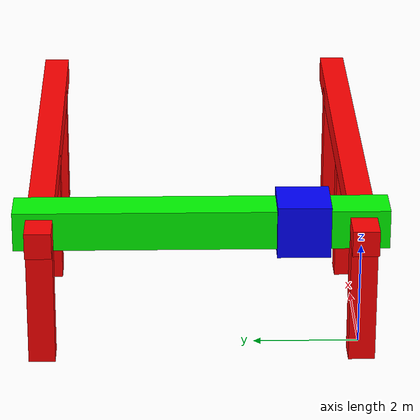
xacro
<?xml version="1.0"?>
<robot name="gudel" xmlns:xacro="http://wiki.ros.org/xacro" xmlns:tesseract="https://github.com/tesseract-robotics/tesseract" tesseract:make_convex="true">
  <xacro:include filename="$(find tesseract_support)/urdf/gantry_robot_underslung/gudel_fp6_macro.xacro"/>
  <xacro:gudel_fp6 prefix=""/>
</robot>

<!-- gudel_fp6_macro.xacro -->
<robot xmlns:xacro="http://ros.org/wiki/xacro">
  <xacro:macro name="gudel_fp6" params="prefix">

    <xacro:include filename="$(find tesseract_support)/urdf/gantry_robot_underslung/materials.xacro"/>
    <link name="${prefix}base">

    <!-- Rails -->
    <visual>
        <origin rpy="0 0 0" xyz="3.5 6.0 2.5"/>
        <geometry>
          <box size="9.0 0.5 0.5"/>
        </geometry>
        <material name="tesseract_red"/>
    </visual>
    <visual>
        <origin rpy="0 0 0" xyz="3.5 0.0 2.5"/>
        <geometry>
          <box size="9.0 0.5 0.5"/>
        </geometry>
        <material name="tesseract_red"/>
    </visual>
    <!-- Columns -->
    <visual>
        <origin rpy="0 0 0" xyz="-0.5 0.0 1.25"/>
        <geometry>
          <box size="0.5 0.5 2.5"/>
        </geometry>
        <material name="tesseract_red"/>
    </visual>
    <visual>
        <origin rpy="0 0 0" xyz="3.1 0.0 1.25"/>
        <geometry>
          <box size="0.5 0.5 2.5"/>
        </geometry>
        <material name="tesseract_red"/>
    </visual>
    <visual>
        <origin rpy="0 0 0" xyz="6.7 0.0 1.25"/>
        <geometry>
          <box size="0.5 0.5 2.5"/>
        </geometry>
        <material name="tesseract_red"/>
    </visual>
    <visual>
        <origin rpy="0 0 0" xyz="-0.5 6.0 1.25"/>
        <geometry>
          <box size="0.5 0.5 2.5"/>
        </geometry>
        <material name="tesseract_red"/>
    </visual>
    <visual>
        <origin rpy="0 0 0" xyz="3.1 6.0 1.25"/>
        <geometry>
          <box size="0.5 0.5 2.5"/>
        </geometry>
        <material name="tesseract_red"/>
    </visual>
    <visual>
        <origin rpy="0 0 0" xyz="6.7 6.0 1.25"/>
        <geometry>
          <box size="0.5 0.5 2.5"/>
        </geometry>
        <material name="tesseract_red"/>
    </visual>

    </link>
   <link name="${prefix}axis_1">
    <visual>
        <origin rpy="0 0 0" xyz="0.0 3.0 0.1"/>
        <geometry>
          <box size="0.75 7.0 0.75"/>
        </geometry>
        <material name="tesseract_green"/>
    </visual>

    </link>
    <link name="${prefix}axis_2">
      <visual>
          <origin rpy="0 0 0" xyz="0.0 0.0 0.1"/>
          <geometry>
            <box size="1.0 1.0 1.0"/>
          </geometry>
          <material name="tesseract_blue"/>
      </visual>
    </link>
  <link name="${prefix}flange"/>

  <joint name="${prefix}axis_1" type="prismatic">
    <origin xyz="0.0 .0 2.4" rpy="0 0 0"/>
    <parent link="${prefix}base"/>
    <child link="${prefix}axis_1"/>
    <axis xyz="1 0 0"/>
    <limit lower="0" upper="6.2" effort="0" velocity="0.2"/>
  </joint>
  <joint name="${prefix}axis_2" type="prismatic">
    <origin xyz="0 1.1 0" rpy="0 0 1.57"/>
    <parent link="${prefix}axis_1"/>
    <child link="${prefix}axis_2"/>
    <axis xyz="1 0 0"/>
    <limit lower="0" upper="4.2" effort="0" velocity="0.5"/>
  </joint>
  <joint name="${prefix}flange" type="fixed">
    <origin xyz="-0.18 -0.2 -.4" rpy="3.14159 0 0"/>
    <parent link="${prefix}axis_2"/>
    <child link="${prefix}flange"/>
  </joint>

  </xacro:macro>
</robot>

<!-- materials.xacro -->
<robot>
  <material name="tesseract_black">
    <color rgba="0.0 0.0 0.0 1.0"/>
  </material>

  <material name="tesseract_white">
    <color rgba="1.0 1.0 1.0 1.0"/>
  </material>

  <material name="tesseract_red">
    <color rgba="1.0 0.0 0.0 1.0"/>
  </material>

  <material name="tesseract_green">
    <color rgba="0.0 1.0 0.0 1.0"/>
  </material>

  <material name="tesseract_blue">
    <color rgba="0.0 0.0 1.0 1.0"/>
  </material>

  <material name="estop_red">
    <color rgba="0.8 0 0 0.05"/>
  </material>
</robot>
